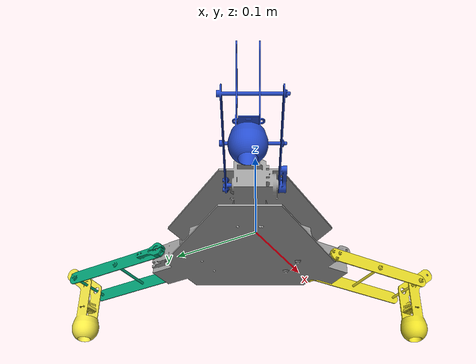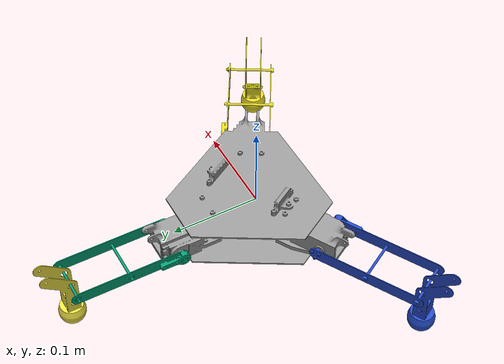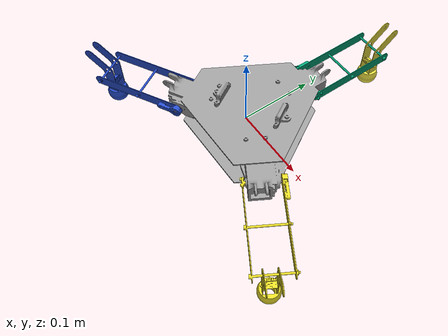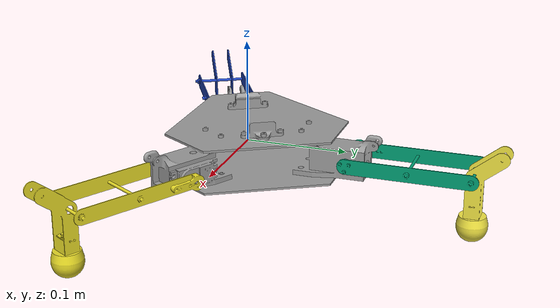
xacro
<?xml version="1.0" ?>
<robot name="landing_gear" xmlns:xacro="http://ros.org/wiki/xacro">
<xacro:include filename="$(find landing_gear_description)/urdf/landing_gear.gazebo.xacro"/>
<xacro:include filename="$(find landing_gear_description)/urdf/leg.urdf.xacro"/>

<!-- Base Link -->
<link name="base_link">
    <origin xyz="0 0 0" rpy="0 0 0"/>
        <inertial>
            <mass value="0.1"/>
            <inertia ixx="0.001" ixy="0.0" ixz="0.0" iyy="0.001" iyz="0.0" izz="0.001"/>
        </inertial>
</link>

<joint name="base_link_connection" type="fixed">
    <parent link="base_link"/>
    <child link="base"/>
    <origin xyz="0 0 0" rpy="1.5714 0 0"/>
    <axis xyz="1 0 0"/>
</joint>

<link name="base">
        <visual>
            <origin rpy="0 0 0" xyz="0.01 -0.01 0" />
            <geometry>
                <mesh filename="package://landing_gear_description/meshes/base.stl" scale="0.001 0.001 0.001"/>
            </geometry>
        </visual>
        <collision>
            <origin rpy="0 0 0" xyz="0.01 -0.01 0" />
            <geometry>
                <mesh filename="package://landing_gear_description/meshes/base.stl" scale="0.001 0.001 0.001"/>
            </geometry>
        </collision>
        <inertial>
            <origin xyz="-0.01 0 0" rpy="0 0 0"/>
            <mass value="0.1"/>
            <inertia ixx="0.001" ixy="0.0" ixz="0.0" iyy="0.001" iyz="0.0" izz="0.001"/>
        </inertial>
</link>

<!-- x y z R P Y are base to link1 pose -->
<xacro:leg postfix="1" x="0" y="-0.0058" z="-0.105" R="-1.5714" P="3.1415" Y="0"/>
<xacro:leg postfix="2" x="0.0856" y="-0.0058" z="0.04" R="-1.5714" P="1.0475" Y="0"/>
<xacro:leg postfix="3" x="-0.083" y="-0.0058" z="0.04" R="-1.5714" P="-1.0475" Y="0"/>

<!-- IMU  -->

<joint name="imu_joint" type="fixed">
    <parent link="base_link"/>
    <child link="imu_link"/>
    <origin xyz="0.0 0 0" rpy="0 0 0"/>
  </joint>

<link name="imu_link"/>

<!-- gazebo IMU -->
 <gazebo reference="imu_link">
    <sensor type="imu" name="imu">
      <always_on>true</always_on>
      <visualize>true</visualize>
    </sensor>
    <material>Gazebo/Grey</material>
</gazebo>

 <gazebo reference="imu_link">
    <gravity>true</gravity>
    <sensor name="imu_sensor" type="imu">
      <always_on>true</always_on>
      <update_rate>100</update_rate>
      <visualize>true</visualize>
      <topic>__default_topic__</topic>
      <plugin filename="libgazebo_ros_imu_sensor.so" name="imu_plugin">
        <topicName>imu</topicName>
        <bodyName>imu_link</bodyName>
        <updateRateHZ>10.0</updateRateHZ>
        <gaussianNoise>0.0</gaussianNoise>
        <xyzOffset>0 0 0</xyzOffset>
        <rpyOffset>0 0 0</rpyOffset>
        <frameName>imu_link</frameName>
        <initialOrientationAsReference>false</initialOrientationAsReference>
      </plugin>
      <pose>0 0 0 0 0 0</pose>
    </sensor>
</gazebo>

</robot>

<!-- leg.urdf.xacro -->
<robot name="landing_gear_leg" xmlns:xacro="http://ros.org/wiki/xacro">

<xacro:macro name="leg" params="postfix x y z R P Y ">

<!-- LINK 1 -->
    <link name="leg_${postfix}">
        <visual>
            <origin rpy="0 0 0" xyz="0 -0.136 -0.017" />
            <geometry>
                <mesh filename="package://landing_gear_description/meshes/link1.stl" scale="0.001 0.001 0.001"/>
            </geometry>
        </visual>
        <collision>
            <origin rpy="0 0 0" xyz="0 -0.136 -0.017" />
            <geometry>
                <mesh filename="package://landing_gear_description/meshes/link1.stl" scale="0.001 0.001 0.001"/>
            </geometry>
        </collision>
        <inertial>
            <origin rpy="0 0 0" xyz="0 0 0" />
            <mass value="0.1"/>
            <inertia ixx="0.001" ixy="0.0" ixz="0.0" iyy="0.001" iyz="0.0" izz="0.001"/>
        </inertial>
    </link>

<!-- Base to LINK1 -->
    <joint name="base_leg_${postfix}_joint" type="revolute">
        <parent link="base"/>
        <child link="leg_${postfix}"/>
        <!-- the link 1 rotated  ni x rad-->
        <origin xyz="${x} ${y} ${z}" rpy="${R} ${P} ${Y}"/>
        <axis xyz="-1 0 0"/>
        <limit effort="100" velocity="1" lower="-1.5714" upper="1.5714"/>
    </joint>

<!-- LINK2 -->
    <link name="link2_leg_${postfix}">
        <visual>
            <origin rpy="0 0 0" xyz="0.01 0.0125 -0.0125" />
            <geometry>
                <mesh filename="package://landing_gear_description/meshes/link2.stl" scale="0.001 0.001 0.001"/>
            </geometry>
        </visual>
        <collision>
            <origin rpy="0 0 0" xyz="0.01 0.0125 -0.0125" />
            <geometry>
                <mesh filename="package://landing_gear_description/meshes/link2.stl" scale="0.001 0.001 0.001"/>
            </geometry>
            <surface>
                <contact>
                <ode/>
                </contact>
                <friction>
                <ode/>
                <torsional>
                    <ode/>
                </torsional>
                </friction>
                <bounce restitution_coefficient="1.0" threshold="0.01"/>
            </surface>
        </collision>
        <inertial>
            <origin rpy="0 0 0" xyz="0 0 0" />
            <mass value="0.1"/>
            <inertia ixx="0.001" ixy="0.0" ixz="0.0" iyy="0.001" iyz="0.0" izz="0.001"/>
        </inertial>
    </link>
<!-- LINK1 to LINK2 -->
    <joint name="base_link2_leg_${postfix}_joint" type="revolute">
        <parent link="leg_${postfix}"/>
        <child link="link2_leg_${postfix}"/>
        <origin xyz="0 -0.12 0" rpy="-1.5714 0 0"/>
        <axis xyz="1 0 0"/>
        <limit effort="100" velocity="1" lower="-3.1415" upper="3.1415"/>
    </joint>

<!-- Base to LINK1 Transmission -->
    <transmission name="leg_${postfix}_transmission">
        <type>transmission_interfacec/SimpleTransmission</type>
        <actuator name="motor${postfix}">
            <mechanicalReduction>1</mechanicalReduction>
        </actuator>
        <joint name="base_leg_${postfix}_joint">
            <hardwareInterface>hardware_interface/EffortJointInterface</hardwareInterface>
        </joint>
    </transmission>

<!-- LINK1 to LINK2 Transmission -->
    <transmission name="leg_${postfix}_2_transmission">
        <type>transmission_interfacec/SimpleTransmission</type>
        <actuator name="motor${postfix}_2">
            <mechanicalReduction>1</mechanicalReduction>
        </actuator>
        <joint name="base_link2_leg_${postfix}_joint">
            <hardwareInterface>hardware_interface/EffortJointInterface</hardwareInterface>
        </joint>
    </transmission>

<!-- lidar sensor link-->
<link name="base_scan_${postfix}">
    <origin rpy="0 0 0" xyz="0 0 0" />
    <inertial>
        <origin xyz="0.0 0.0 0.0" rpy="0.0 0.0 0.0"/>
        <mass value="0.0001"/>
        <inertia ixx="1" ixy="0.0" ixz="0" iyy="1" iyz="0.0" izz="1"/>
    </inertial>
</link>
<joint name="scan_joint_${postfix}" type="fixed">
    <parent link="link2_leg_${postfix}"/>
    <child link="base_scan_${postfix}"/>
    <origin xyz="0 0.05 0" rpy="0 0 1.57"/>
    <axis xyz="1 0 0"/>
</joint>
<!-- lidar sensor gazebo plugin-->
<gazebo reference="base_scan_${postfix}">
    <gravity>true</gravity>
    <sensor type="ray" name="laser_scan_${postfix}">
        <pose>0 0 0 0 0 0</pose>
        <visualize>true</visualize>
        <always_on>true</always_on>
        <update_rate>5</update_rate>
        <ray>
            <scan>
            <horizontal>
              <samples>1</samples>
              <resolution>1</resolution>

            </horizontal>
            </scan>
            <range>
                <min>0.01</min>
                <max>2</max>
                <resolution>0.015</resolution>
            </range>
            <noise>
                <type>gaussian</type>
                <mean>0.0</mean>
                <stddev>0.0</stddev>
            </noise>
        </ray>
        <plugin name="gazebo_ros_scan_controller" filename="libgazebo_ros_laser.so">
            <robotNamespace>lg</robotNamespace>
            <topicName>lidar${postfix}</topicName>
            <frameName>base_scan_${postfix}</frameName>
        </plugin>
    </sensor>
    </gazebo>

</xacro:macro>
</robot>
